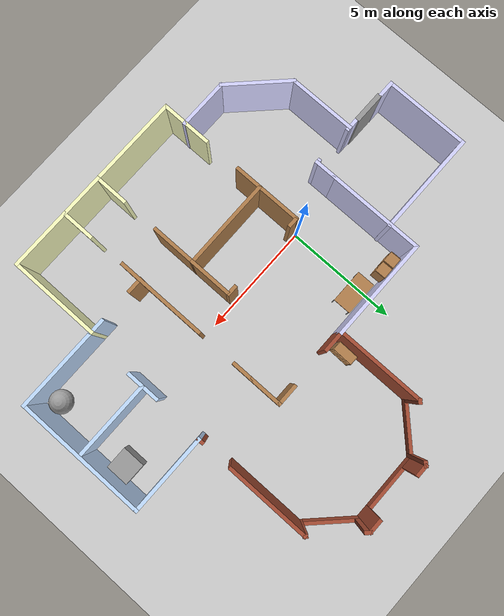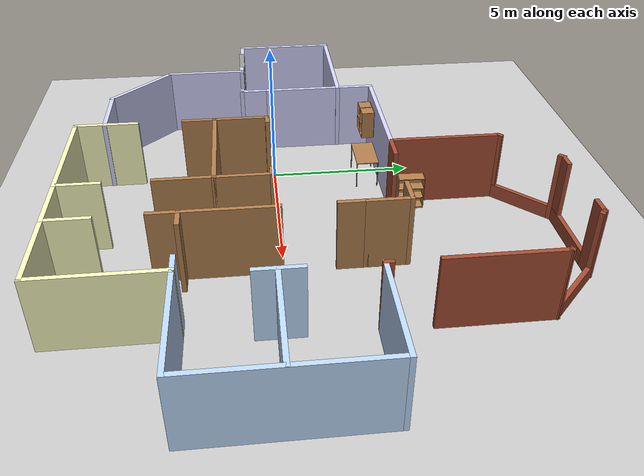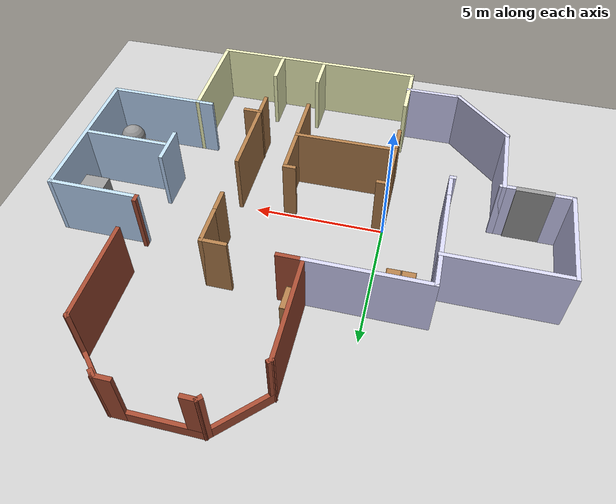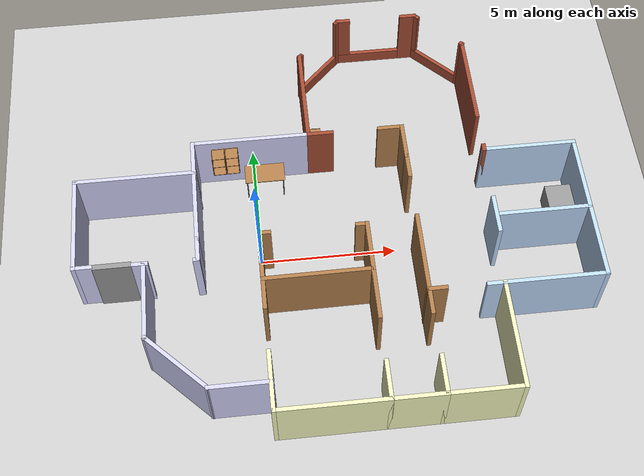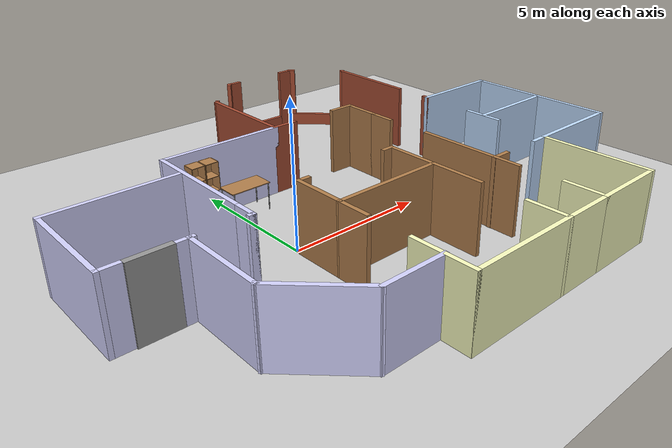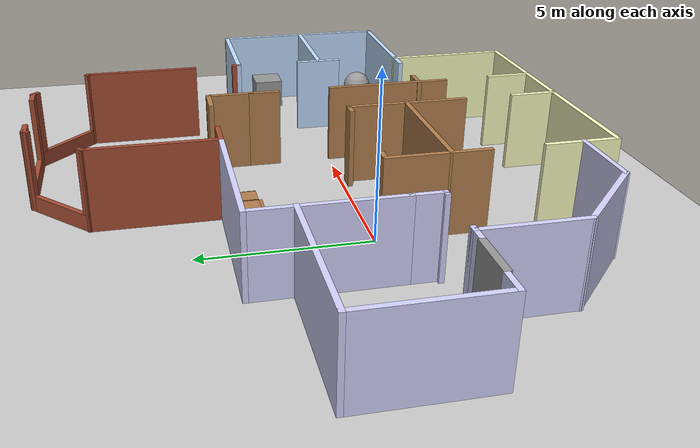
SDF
<sdf version="1.6">
 <world name="default">
  <light name="sun" type="directional">
   <pose>0 0 10 0 -0 0</pose>
   <diffuse>0.8 0.8 0.8 1</diffuse>
   <specular>0.2 0.2 0.2 1</specular>
   <attenuation>
    <range>1000</range>
    <constant>0.9</constant>
    <linear>0.01</linear>
    <quadratic>0.001</quadratic>
   </attenuation>
   <direction>-0.5 0.1 -0.9</direction>
  </light>
  <model name="ground_plane">
   <static>1</static>
   <link name="link">
    <collision name="collision">
     <geometry><plane><normal>0 0 1</normal><size>100 100</size></plane></geometry>
     <surface>
      <contact><collide_bitmask>65535</collide_bitmask></contact>
      <friction><ode><mu>100</mu><mu2>50</mu2></ode></friction>
     </surface>
    </collision>
    <visual name="visual">
     <cast_shadows>0</cast_shadows>
     <geometry><plane><normal>0 0 1</normal><size>100 100</size></plane></geometry>
     <material>
      <script><uri>file://media/materials/scripts/gazebo.material</uri><name>Gazebo/Grey</name></script>
     </material>
    </visual>
   </link>
  </model>
  <gravity>0 0 -9.8</gravity>
  <magnetic_field>6e-06 2.3e-05 -4.2e-05</magnetic_field>
  <atmosphere type="adiabatic"/>
  <physics name="default_physics" default="0" type="ode">
   <max_step_size>0.001</max_step_size>
   <real_time_factor>1</real_time_factor>
   <real_time_update_rate>1000</real_time_update_rate>
  </physics>
  <scene><ambient>0.4 0.4 0.4 1</ambient><background>0.7 0.7 0.7 1</background><shadows>1</shadows></scene>
  <spherical_coordinates>
   <surface_model>EARTH_WGS84</surface_model>
   <latitude_deg>0</latitude_deg>
   <longitude_deg>0</longitude_deg>
   <elevation>0</elevation>
   <heading_deg>0</heading_deg>
  </spherical_coordinates>
  <model name="largehouse">
   <pose>2.70916 1.2195 0 0 -0 0</pose>
   <link name="Door_1">
    <collision name="Door_1_Collision">
     <geometry><box><size>1.364 0.2 2.5</size></box></geometry>
     <pose>0 0 1.25 0 -0 0</pose>
    </collision>
    <visual name="Door_1_Visual">
     <pose>0 0 1.25 0 -0 0</pose>
     <geometry><box><size>1.364 0.2 2.5</size></box></geometry>
     <material>
      <script><uri>file://media/materials/scripts/gazebo.material</uri><name>Gazebo/Grey</name></script>
     </material>
    </visual>
    <pose>-7.8761 -2.2287 0 0 -0 0</pose>
   </link>
   <link name="Wall_0">
    <collision name="Wall_0_Collision">
     <geometry><box><size>4.00005 0.15 2.5</size></box></geometry>
     <pose>0 0 1.25 0 -0 0</pose>
    </collision>
    <visual name="Wall_0_Visual">
     <pose>0 0 1.25 0 -0 0</pose>
     <geometry><box><size>4.00005 0.15 2.5</size></box></geometry>
     <material>
      <script><uri>file://media/materials/scripts/gazebo.material</uri><name>Gazebo/Wood</name></script>
      <ambient>1 1 1 1</ambient>
     </material>
     <meta><layer>0</layer></meta>
    </visual>
    <pose>-0.765166 -3.26121 0 0 -0 0.005224</pose>
   </link>
   <link name="Wall_1">
    <collision name="Wall_1_Collision">
     <geometry><box><size>1.97989 0.15 2.5</size></box></geometry>
     <pose>0 0 1.25 0 -0 0</pose>
    </collision>
    <visual name="Wall_1_Visual">
     <pose>0 0 1.25 0 -0 0</pose>
     <geometry><box><size>1.97989 0.15 2.5</size></box></geometry>
     <material>
      <script><uri>file://media/materials/scripts/gazebo.material</uri><name>Gazebo/Wood</name></script>
      <ambient>1 1 1 1</ambient>
     </material>
     <meta><layer>0</layer></meta>
    </visual>
    <pose>1.15983 -2.33621 0 0 -0 1.5708</pose>
   </link>
   <link name="Wall_102">
    <pose>0.267282 7.25959 0 0 0 -2.35619</pose>
    <visual name="Wall_102_Visual_0">
     <pose>-1.11851 0 1.25 0 -0 0</pose>
     <geometry><box><size>0.262969 0.15 2.5</size></box></geometry>
     <material>
      <script><uri>file://media/materials/scripts/gazebo.material</uri><name>Gazebo/Bricks</name></script>
      <ambient>1 1 1 1</ambient>
     </material>
     <meta><layer>0</layer></meta>
    </visual>
    <collision name="Wall_102_Collision_0">
     <geometry><box><size>0.262969 0.15 2.5</size></box></geometry>
     <pose>-1.11851 0 1.25 0 -0 0</pose>
    </collision>
    <visual name="Wall_102_Visual_1">
     <pose>0.131485 0 0.25 0 -0 0</pose>
     <geometry><box><size>2.23703 0.15 0.5</size></box></geometry>
     <material>
      <script><uri>file://media/materials/scripts/gazebo.material</uri><name>Gazebo/Bricks</name></script>
      <ambient>1 1 1 1</ambient>
     </material>
     <meta><layer>0</layer></meta>
    </visual>
    <collision name="Wall_102_Collision_1">
     <geometry><box><size>2.23703 0.15 0.5</size></box></geometry>
     <pose>0.131485 0 0.25 0 -0 0</pose>
    </collision>
    <visual name="Wall_102_Visual_2">
     <pose>1.13149 0 1.5 0 -0 0</pose>
     <geometry><box><size>0.237031 0.15 2</size></box></geometry>
     <material>
      <script><uri>file://media/materials/scripts/gazebo.material</uri><name>Gazebo/Bricks</name></script>
      <ambient>1 1 1 1</ambient>
     </material>
     <meta><layer>0</layer></meta>
    </visual>
    <collision name="Wall_102_Collision_2">
     <geometry><box><size>0.237031 0.15 2</size></box></geometry>
     <pose>1.13149 0 1.5 0 -0 0</pose>
    </collision>
   </link>
   <link name="Wall_103">
    <collision name="Wall_103_Collision">
     <geometry><box><size>3.75 0.15 2.5</size></box></geometry>
     <pose>0 0 1.25 0 -0 0</pose>
    </collision>
    <visual name="Wall_103_Visual">
     <pose>0 0 1.25 0 -0 0</pose>
     <geometry><box><size>3.75 0.15 2.5</size></box></geometry>
     <material>
      <script><uri>file://media/materials/scripts/gazebo.material</uri><name>Gazebo/Bricks</name></script>
      <ambient>1 1 1 1</ambient>
     </material>
     <meta><layer>0</layer></meta>
    </visual>
    <pose>-0.563568 4.62874 0 0 0 -1.5708</pose>
   </link>
   <link name="Wall_106">
    <collision name="Wall_106_Collision">
     <geometry><box><size>4.5 0.15 2.5</size></box></geometry>
     <pose>0 0 1.25 0 -0 0</pose>
    </collision>
    <visual name="Wall_106_Visual">
     <pose>0 0 1.25 0 -0 0</pose>
     <geometry><box><size>4.5 0.15 2.5</size></box></geometry>
     <material>
      <script><uri>file://media/materials/scripts/gazebo.material</uri><name>Gazebo/Grey</name></script>
      <ambient>0.835294 0.835294 1 1</ambient>
     </material>
     <meta><layer>0</layer></meta>
    </visual>
    <pose>-2.71517 2.67874 0 0 -0 0</pose>
   </link>
   <link name="Wall_107">
    <collision name="Wall_107_Collision">
     <geometry><box><size>1 0.15 2.5</size></box></geometry>
     <pose>0 0 1.25 0 -0 0</pose>
    </collision>
    <visual name="Wall_107_Visual">
     <pose>0 0 1.25 0 -0 0</pose>
     <geometry><box><size>1 0.15 2.5</size></box></geometry>
     <material>
      <script><uri>file://media/materials/scripts/gazebo.material</uri><name>Gazebo/Bricks</name></script>
      <ambient>0.670588 0.678431 1 1</ambient>
     </material>
     <meta><layer>0</layer></meta>
    </visual>
    <pose>-0.115166 2.67874 0 0 -0 0</pose>
   </link>
   <link name="Wall_109">
    <collision name="Wall_109_Collision">
     <geometry><box><size>1 0.15 2.5</size></box></geometry>
     <pose>0 0 1.25 0 -0 0</pose>
    </collision>
    <visual name="Wall_109_Visual">
     <pose>0 0 1.25 0 -0 0</pose>
     <geometry><box><size>1 0.15 2.5</size></box></geometry>
     <material>
      <script><uri>file://media/materials/scripts/gazebo.material</uri><name>Gazebo/Wood</name></script>
      <ambient>1 1 1 1</ambient>
     </material>
     <meta><layer>0</layer></meta>
    </visual>
    <pose>2.53483 2.67874 0 0 -0 3.14159</pose>
   </link>
   <link name="Wall_15">
    <collision name="Wall_15_Collision">
     <geometry><box><size>2 0.15 2.5</size></box></geometry>
     <pose>0 0 1.25 0 -0 0</pose>
    </collision>
    <visual name="Wall_15_Visual">
     <pose>0 0 1.25 0 -0 0</pose>
     <geometry><box><size>2 0.15 2.5</size></box></geometry>
     <material>
      <script><uri>file://media/materials/scripts/gazebo.material</uri><name>Gazebo/Wood</name></script>
      <ambient>1 1 1 1</ambient>
     </material>
     <meta><layer>0</layer></meta>
    </visual>
    <pose>1.15983 -4.19626 0 0 0 -1.5708</pose>
   </link>
   <link name="Wall_18">
    <collision name="Wall_18_Collision">
     <geometry><box><size>4 0.15 2.5</size></box></geometry>
     <pose>0 0 1.25 0 -0 0</pose>
    </collision>
    <visual name="Wall_18_Visual">
     <pose>0 0 1.25 0 -0 0</pose>
     <geometry><box><size>4 0.15 2.5</size></box></geometry>
     <material>
      <script><uri>file://media/materials/scripts/gazebo.material</uri><name>Gazebo/Grey</name></script>
      <ambient>0.988235 1 0.760784 1</ambient>
     </material>
     <meta><layer>0</layer></meta>
    </visual>
    <pose>-0.765166 -8.12126 0 0 -0 0</pose>
   </link>
   <link name="Wall_19">
    <collision name="Wall_19_Collision">
     <geometry><box><size>1.5 0.15 2.5</size></box></geometry>
     <pose>0 0 1.25 0 -0 0</pose>
    </collision>
    <visual name="Wall_19_Visual">
     <pose>0 0 1.25 0 -0 0</pose>
     <geometry><box><size>1.5 0.15 2.5</size></box></geometry>
     <material>
      <script><uri>file://media/materials/scripts/gazebo.material</uri><name>Gazebo/Grey</name></script>
      <ambient>0.988235 1 0.760784 1</ambient>
     </material>
     <meta><layer>0</layer></meta>
    </visual>
    <pose>1.15983 -7.44626 0 0 -0 1.5708</pose>
   </link>
   <link name="Wall_2">
    <collision name="Wall_2_Collision">
     <geometry><box><size>0.5 0.15 2.5</size></box></geometry>
     <pose>0 0 1.25 0 -0 0</pose>
    </collision>
    <visual name="Wall_2_Visual">
     <pose>0 0 1.25 0 -0 0</pose>
     <geometry><box><size>0.5 0.15 2.5</size></box></geometry>
     <material>
      <script><uri>file://media/materials/scripts/gazebo.material</uri><name>Gazebo/Wood</name></script>
      <ambient>1 1 1 1</ambient>
     </material>
     <meta><layer>0</layer></meta>
    </visual>
    <pose>0.984834 -1.42126 0 0 -0 3.14159</pose>
   </link>
   <link name="Wall_21">
    <collision name="Wall_21_Collision">
     <geometry><box><size>2 0.15 2.5</size></box></geometry>
     <pose>0 0 1.25 0 -0 0</pose>
    </collision>
    <visual name="Wall_21_Visual">
     <pose>0 0 1.25 0 -0 0</pose>
     <geometry><box><size>2 0.15 2.5</size></box></geometry>
     <material>
      <script><uri>file://media/materials/scripts/gazebo.material</uri><name>Gazebo/Grey</name></script>
      <ambient>0.988235 1 0.760784 1</ambient>
     </material>
     <meta><layer>0</layer></meta>
    </visual>
    <pose>2.08483 -8.12126 0 0 -0 0</pose>
   </link>
   <link name="Wall_22">
    <collision name="Wall_22_Collision">
     <geometry><box><size>1.5 0.15 2.5</size></box></geometry>
     <pose>0 0 1.25 0 -0 0</pose>
    </collision>
    <visual name="Wall_22_Visual">
     <pose>0 0 1.25 0 -0 0</pose>
     <geometry><box><size>1.5 0.15 2.5</size></box></geometry>
     <material>
      <script><uri>file://media/materials/scripts/gazebo.material</uri><name>Gazebo/Grey</name></script>
      <ambient>0.988235 1 0.760784 1</ambient>
     </material>
     <meta><layer>0</layer></meta>
    </visual>
    <pose>3.00983 -7.44626 0 0 -0 1.5708</pose>
   </link>
   <link name="Wall_24">
    <collision name="Wall_24_Collision">
     <geometry><box><size>4 0.15 2.5</size></box></geometry>
     <pose>0 0 1.25 0 -0 0</pose>
    </collision>
    <visual name="Wall_24_Visual">
     <pose>0 0 1.25 0 -0 0</pose>
     <geometry><box><size>4 0.15 2.5</size></box></geometry>
     <material>
      <script><uri>file://media/materials/scripts/gazebo.material</uri><name>Gazebo/Wood</name></script>
      <ambient>1 1 1 1</ambient>
     </material>
     <meta><layer>0</layer></meta>
    </visual>
    <pose>2.96886 -3.22346 0 0 -0 1.5708</pose>
   </link>
   <link name="Wall_27">
    <collision name="Wall_27_Collision">
     <geometry><box><size>2.75 0.15 2.5</size></box></geometry>
     <pose>0 0 1.25 0 -0 0</pose>
    </collision>
    <visual name="Wall_27_Visual">
     <pose>0 0 1.25 0 -0 0</pose>
     <geometry><box><size>2.75 0.15 2.5</size></box></geometry>
     <material>
      <script><uri>file://media/materials/scripts/gazebo.material</uri><name>Gazebo/Grey</name></script>
      <ambient>0.988235 1 0.760784 1</ambient>
     </material>
     <meta><layer>0</layer></meta>
    </visual>
    <pose>4.30983 -8.12126 0 0 -0 0</pose>
   </link>
   <link name="Wall_28">
    <collision name="Wall_28_Collision">
     <geometry><box><size>4.00048 0.15 2.5</size></box></geometry>
     <pose>0 0 1.25 0 -0 0</pose>
    </collision>
    <visual name="Wall_28_Visual">
     <pose>0 0 1.25 0 -0 0</pose>
     <geometry><box><size>4.00048 0.15 2.5</size></box></geometry>
     <material>
      <script><uri>file://media/materials/scripts/gazebo.material</uri><name>Gazebo/Grey</name></script>
      <ambient>0.988235 1 0.760784 1</ambient>
     </material>
     <meta><layer>0</layer></meta>
    </visual>
    <pose>5.60983 -6.19626 0 0 -0 1.5708</pose>
   </link>
   <link name="Wall_35">
    <collision name="Wall_35_Collision">
     <geometry><box><size>0.75 0.15 2.5</size></box></geometry>
     <pose>0 0 1.25 0 -0 0</pose>
    </collision>
    <visual name="Wall_35_Visual">
     <pose>0 0 1.25 0 -0 0</pose>
     <geometry><box><size>0.75 0.15 2.5</size></box></geometry>
     <material>
      <script><uri>file://media/materials/scripts/gazebo.material</uri><name>Gazebo/Grey</name></script>
      <ambient>0.752941 0.866667 1 1</ambient>
     </material>
     <meta><layer>0</layer></meta>
    </visual>
    <pose>5.34025 -4.27126 0 0 -0 3.14159</pose>
   </link>
   <link name="Wall_37">
    <collision name="Wall_37_Collision">
     <geometry><box><size>0.75 0.15 2.5</size></box></geometry>
     <pose>0 0 1.25 0 -0 0</pose>
    </collision>
    <visual name="Wall_37_Visual">
     <pose>0 0 1.25 0 -0 0</pose>
     <geometry><box><size>0.75 0.15 2.5</size></box></geometry>
     <material>
      <script><uri>file://media/materials/scripts/gazebo.material</uri><name>Gazebo/Wood</name></script>
      <ambient>1 1 1 1</ambient>
     </material>
     <meta><layer>0</layer></meta>
    </visual>
    <pose>3.25047 -4.26025 0 0 -0 0</pose>
   </link>
   <link name="Wall_39">
    <collision name="Wall_39_Collision">
     <geometry><box><size>3.75 0.15 2.5</size></box></geometry>
     <pose>0 0 1.25 0 -0 0</pose>
    </collision>
    <visual name="Wall_39_Visual">
     <pose>0 0 1.25 0 -0 0</pose>
     <geometry><box><size>3.75 0.15 2.5</size></box></geometry>
     <material>
      <script><uri>file://media/materials/scripts/gazebo.material</uri><name>Gazebo/Grey</name></script>
      <ambient>0.752941 0.866667 1 1</ambient>
     </material>
     <meta><layer>0</layer></meta>
    </visual>
    <pose>7.40983 -4.27126 0 0 -0 0</pose>
   </link>
   <link name="Wall_40">
    <collision name="Wall_40_Collision">
     <geometry><box><size>5.75025 0.15 2.5</size></box></geometry>
     <pose>0 0 1.25 0 -0 0</pose>
    </collision>
    <visual name="Wall_40_Visual">
     <pose>0 0 1.25 0 -0 0</pose>
     <geometry><box><size>5.75025 0.15 2.5</size></box></geometry>
     <material>
      <script><uri>file://media/materials/scripts/gazebo.material</uri><name>Gazebo/Grey</name></script>
      <ambient>0.752941 0.866667 1 1</ambient>
     </material>
     <meta><layer>0</layer></meta>
    </visual>
    <pose>9.20983 -1.47126 0 0 -0 1.5708</pose>
   </link>
   <link name="Wall_5">
    <collision name="Wall_5_Collision">
     <geometry><box><size>2 0.15 2.5</size></box></geometry>
     <pose>0 0 1.25 0 -0 0</pose>
    </collision>
    <visual name="Wall_5_Visual">
     <pose>0 0 1.25 0 -0 0</pose>
     <geometry><box><size>2 0.15 2.5</size></box></geometry>
     <material>
      <script><uri>file://media/materials/scripts/gazebo.material</uri><name>Gazebo/Wood</name></script>
      <ambient>1 1 1 1</ambient>
     </material>
     <meta><layer>0</layer></meta>
    </visual>
    <pose>-2.69017 -2.34626 0 0 -0 1.5708</pose>
   </link>
   <link name="Wall_50">
    <collision name="Wall_50_Collision">
     <geometry><box><size>1 0.15 2.5</size></box></geometry>
     <pose>0 0 1.25 0 -0 0</pose>
    </collision>
    <visual name="Wall_50_Visual">
     <pose>0 0 1.25 0 -0 0</pose>
     <geometry><box><size>1 0.15 2.5</size></box></geometry>
     <material>
      <script><uri>file://media/materials/scripts/gazebo.material</uri><name>Gazebo/Wood</name></script>
      <ambient>1 1 1 1</ambient>
     </material>
     <meta><layer>0</layer></meta>
    </visual>
    <pose>2.95983 0.903737 0 0 0 -1.5708</pose>
   </link>
   <link name="Wall_52">
    <collision name="Wall_52_Collision">
     <geometry><box><size>3.5 0.15 2.5</size></box></geometry>
     <pose>0 0 1.25 0 -0 0</pose>
    </collision>
    <visual name="Wall_52_Visual">
     <pose>0 0 1.25 0 -0 0</pose>
     <geometry><box><size>3.5 0.15 2.5</size></box></geometry>
     <material>
      <script><uri>file://media/materials/scripts/gazebo.material</uri><name>Gazebo/Grey</name></script>
      <ambient>0.752941 0.866667 1 1</ambient>
     </material>
     <meta><layer>0</layer></meta>
    </visual>
    <pose>7.52318 -1.51345 0 0 -0 3.14159</pose>
   </link>
   <link name="Wall_54">
    <collision name="Wall_54_Collision">
     <geometry><box><size>1.5 0.15 2.5</size></box></geometry>
     <pose>0 0 1.25 0 -0 0</pose>
    </collision>
    <visual name="Wall_54_Visual">
     <pose>0 0 1.25 0 -0 0</pose>
     <geometry><box><size>1.5 0.15 2.5</size></box></geometry>
     <material>
      <script><uri>file://media/materials/scripts/gazebo.material</uri><name>Gazebo/Wood</name></script>
      <ambient>1 1 1 1</ambient>
     </material>
     <meta><layer>0</layer></meta>
    </visual>
    <pose>2.95983 2.00374 0 0 -0 1.5708</pose>
   </link>
   <link name="Wall_56">
    <collision name="Wall_56_Collision">
     <geometry><box><size>4.25 0.15 2.5</size></box></geometry>
     <pose>0 0 1.25 0 -0 0</pose>
    </collision>
    <visual name="Wall_56_Visual">
     <pose>0 0 1.25 0 -0 0</pose>
     <geometry><box><size>4.25 0.15 2.5</size></box></geometry>
     <material>
      <script><uri>file://media/materials/scripts/gazebo.material</uri><name>Gazebo/Grey</name></script>
      <ambient>0.835294 0.835294 1 1</ambient>
     </material>
     <meta><layer>0</layer></meta>
    </visual>
    <pose>-4.89017 0.628737 0 0 0 -1.5708</pose>
   </link>
   <link name="Wall_6">
    <collision name="Wall_6_Collision">
     <geometry><box><size>0.5 0.15 2.5</size></box></geometry>
     <pose>0 0 1.25 0 -0 0</pose>
    </collision>
    <visual name="Wall_6_Visual">
     <pose>0 0 1.25 0 -0 0</pose>
     <geometry><box><size>0.5 0.15 2.5</size></box></geometry>
     <material>
      <script><uri>file://media/materials/scripts/gazebo.material</uri><name>Gazebo/Wood</name></script>
      <ambient>1 1 1 1</ambient>
     </material>
     <meta><layer>0</layer></meta>
    </visual>
    <pose>-2.51517 -1.42126 0 0 -0 0</pose>
   </link>
   <link name="Wall_61">
    <collision name="Wall_61_Collision">
     <geometry><box><size>1 0.15 2.5</size></box></geometry>
     <pose>0 0 1.25 0 -0 0</pose>
    </collision>
    <visual name="Wall_61_Visual">
     <pose>0 0 1.25 0 -0 0</pose>
     <geometry><box><size>1 0.15 2.5</size></box></geometry>
     <material>
      <script><uri>file://media/materials/scripts/gazebo.material</uri><name>Gazebo/Grey</name></script>
      <ambient>0.835294 0.835294 1 1</ambient>
     </material>
     <meta><layer>0</layer></meta>
    </visual>
    <pose>-4.89017 -1.84626 0 0 0 -1.5708</pose>
   </link>
   <link name="Wall_68">
    <collision name="Wall_68_Collision">
     <geometry><box><size>2.25 0.15 2.5</size></box></geometry>
     <pose>0 0 1.25 0 -0 0</pose>
    </collision>
    <visual name="Wall_68_Visual">
     <pose>0 0 1.25 0 -0 0</pose>
     <geometry><box><size>2.25 0.15 2.5</size></box></geometry>
     <material>
      <script><uri>file://media/materials/scripts/gazebo.material</uri><name>Gazebo/Grey</name></script>
      <ambient>0.835294 0.835294 1 1</ambient>
     </material>
     <meta><layer>0</layer></meta>
    </visual>
    <pose>-3.72078 -7.11434 0 0 -0 3.14159</pose>
   </link>
   <link name="Wall_69">
    <collision name="Wall_69_Collision">
     <geometry><box><size>3 0.15 2.5</size></box></geometry>
     <pose>0 0 1.25 0 -0 0</pose>
    </collision>
    <visual name="Wall_69_Visual">
     <pose>0 0 1.25 0 -0 0</pose>
     <geometry><box><size>3 0.15 2.5</size></box></geometry>
     <material>
      <script><uri>file://media/materials/scripts/gazebo.material</uri><name>Gazebo/Grey</name></script>
      <ambient>0.835294 0.835294 1 1</ambient>
     </material>
     <meta><layer>0</layer></meta>
    </visual>
    <pose>-5.77841 -6.10671 0 0 -0 2.35619</pose>
   </link>
   <link name="Wall_70">
    <collision name="Wall_70_Collision">
     <geometry><box><size>3 0.15 2.5</size></box></geometry>
     <pose>0 0 1.25 0 -0 0</pose>
    </collision>
    <visual name="Wall_70_Visual">
     <pose>0 0 1.25 0 -0 0</pose>
     <geometry><box><size>3 0.15 2.5</size></box></geometry>
     <material>
      <script><uri>file://media/materials/scripts/gazebo.material</uri><name>Gazebo/Grey</name></script>
      <ambient>0.835294 0.835294 1 1</ambient>
     </material>
     <meta><layer>0</layer></meta>
    </visual>
    <pose>-6.78603 -3.67408 0 0 -0 1.5708</pose>
   </link>
   <link name="Wall_72">
    <collision name="Wall_72_Collision">
     <geometry><box><size>0.25 0.15 2.5</size></box></geometry>
     <pose>0 0 1.25 0 -0 0</pose>
    </collision>
    <visual name="Wall_72_Visual">
     <pose>0 0 1.25 0 -0 0</pose>
     <geometry><box><size>0.25 0.15 2.5</size></box></geometry>
     <material>
      <script><uri>file://media/materials/scripts/gazebo.material</uri><name>Gazebo/Grey</name></script>
      <ambient>0.835294 0.835294 1 1</ambient>
     </material>
     <meta><layer>0</layer></meta>
    </visual>
    <pose>-4.94017 -2.27126 0 0 -0 3.14159</pose>
   </link>
   <link name="Wall_74">
    <collision name="Wall_74_Collision">
     <geometry><box><size>0.25 0.15 2.5</size></box></geometry>
     <pose>0 0 1.25 0 -0 0</pose>
    </collision>
    <visual name="Wall_74_Visual">
     <pose>0 0 1.25 0 -0 0</pose>
     <geometry><box><size>0.25 0.15 2.5</size></box></geometry>
     <material>
      <script><uri>file://media/materials/scripts/gazebo.material</uri><name>Gazebo/Grey</name></script>
      <ambient>0.835294 0.835294 1 1</ambient>
     </material>
     <meta><layer>0</layer></meta>
    </visual>
    <pose>-6.73603 -2.24908 0 0 -0 0</pose>
   </link>
   <link name="Wall_76">
    <collision name="Wall_76_Collision">
     <geometry><box><size>4.5 0.15 2.5</size></box></geometry>
     <pose>0 0 1.25 0 -0 0</pose>
    </collision>
    <visual name="Wall_76_Visual">
     <pose>0 0 1.25 0 -0 0</pose>
     <geometry><box><size>4.5 0.15 2.5</size></box></geometry>
     <material>
      <script><uri>file://media/materials/scripts/gazebo.material</uri><name>Gazebo/Grey</name></script>
      <ambient>0.835294 0.835294 1 1</ambient>
     </material>
     <meta><layer>0</layer></meta>
    </visual>
    <pose>-7.03484 1.40368 0 0 -0 3.14159</pose>
   </link>
   <link name="Wall_77">
    <collision name="Wall_77_Collision">
     <geometry><box><size>3.75 0.15 2.5</size></box></geometry>
     <pose>0 0 1.25 0 -0 0</pose>
    </collision>
    <visual name="Wall_77_Visual">
     <pose>0 0 1.25 0 -0 0</pose>
     <geometry><box><size>3.75 0.15 2.5</size></box></geometry>
     <material>
      <script><uri>file://media/materials/scripts/gazebo.material</uri><name>Gazebo/Grey</name></script>
      <ambient>0.835294 0.835294 1 1</ambient>
     </material>
     <meta><layer>0</layer></meta>
    </visual>
    <pose>-9.20983 -0.396325 0 0 0 -1.5708</pose>
   </link>
   <link name="Wall_78">
    <collision name="Wall_78_Collision">
     <geometry><box><size>0.75 0.15 2.5</size></box></geometry>
     <pose>0 0 1.25 0 -0 0</pose>
    </collision>
    <visual name="Wall_78_Visual">
     <pose>0 0 1.25 0 -0 0</pose>
     <geometry><box><size>0.75 0.15 2.5</size></box></geometry>
     <material>
      <script><uri>file://media/materials/scripts/gazebo.material</uri><name>Gazebo/Grey</name></script>
      <ambient>0.835294 0.835294 1 1</ambient>
     </material>
     <meta><layer>0</layer></meta>
    </visual>
    <pose>-8.90983 -2.19632 0 0 -0 0</pose>
   </link>
   <link name="Wall_80">
    <collision name="Wall_80_Collision">
     <geometry><box><size>0.5 0.15 2.5</size></box></geometry>
     <pose>0 0 1.25 0 -0 0</pose>
    </collision>
    <visual name="Wall_80_Visual">
     <pose>0 0 1.25 0 -0 0</pose>
     <geometry><box><size>0.5 0.15 2.5</size></box></geometry>
     <material>
      <script><uri>file://media/materials/scripts/gazebo.material</uri><name>Gazebo/Grey</name></script>
      <ambient>0.835294 0.835294 1 1</ambient>
     </material>
     <meta><layer>0</layer></meta>
    </visual>
    <pose>-6.96103 -2.24908 0 0 -0 3.14159</pose>
   </link>
   <link name="Wall_82">
    <collision name="Wall_82_Collision">
     <geometry><box><size>1.5 0.15 2.5</size></box></geometry>
     <pose>0 0 1.25 0 -0 0</pose>
    </collision>
    <visual name="Wall_82_Visual">
     <pose>0 0 1.25 0 -0 0</pose>
     <geometry><box><size>1.5 0.15 2.5</size></box></geometry>
     <material>
      <script><uri>file://media/materials/scripts/gazebo.material</uri><name>Gazebo/Grey</name></script>
      <ambient>0.752941 0.866667 1 1</ambient>
     </material>
     <meta><layer>0</layer></meta>
    </visual>
    <pose>5.81671 -1.4918 0 0 0 -1.5708</pose>
   </link>
   <link name="Wall_84">
    <collision name="Wall_84_Collision">
     <geometry><box><size>1.25 0.15 2.5</size></box></geometry>
     <pose>0 0 1.25 0 -0 0</pose>
    </collision>
    <visual name="Wall_84_Visual">
     <pose>0 0 1.25 0 -0 0</pose>
     <geometry><box><size>1.25 0.15 2.5</size></box></geometry>
     <material>
      <script><uri>file://media/materials/scripts/gazebo.material</uri><name>Gazebo/Wood</name></script>
      <ambient>1 1 1 1</ambient>
     </material>
     <meta><layer>0</layer></meta>
    </visual>
    <pose>-2.69017 -3.82126 0 0 0 -1.5708</pose>
   </link>
   <link name="Wall_86">
    <collision name="Wall_86_Collision">
     <geometry><box><size>2.25 0.15 2.5</size></box></geometry>
     <pose>0 0 1.25 0 -0 0</pose>
    </collision>
    <visual name="Wall_86_Visual">
     <pose>0 0 1.25 0 -0 0</pose>
     <geometry><box><size>2.25 0.15 2.5</size></box></geometry>
     <material>
      <script><uri>file://media/materials/scripts/gazebo.material</uri><name>Gazebo/Grey</name></script>
      <ambient>0.988235 1 0.760784 1</ambient>
     </material>
     <meta><layer>0</layer></meta>
    </visual>
    <pose>-2.69017 -7.07126 0 0 -0 1.5708</pose>
   </link>
   <link name="Wall_88">
    <collision name="Wall_88_Collision">
     <geometry><box><size>3.5 0.15 2.5</size></box></geometry>
     <pose>0 0 1.25 0 -0 0</pose>
    </collision>
    <visual name="Wall_88_Visual">
     <pose>0 0 1.25 0 -0 0</pose>
     <geometry><box><size>3.5 0.15 2.5</size></box></geometry>
     <material>
      <script><uri>file://media/materials/scripts/gazebo.material</uri><name>Gazebo/Grey</name></script>
      <ambient>0.752941 0.866667 1 1</ambient>
     </material>
     <meta><layer>0</layer></meta>
    </visual>
    <pose>7.53483 1.32874 0 0 -0 3.14159</pose>
   </link>
   <link name="Wall_90">
    <pose>5.85983 3.87874 0 0 -0 1.5708</pose>
    <visual name="Wall_90_Visual_0">
     <pose>-2.46761 0 1.25 0 -0 0</pose>
     <geometry><box><size>0.314771 0.15 2.5</size></box></geometry>
     <material>
      <script><uri>file://media/materials/scripts/gazebo.material</uri><name>Gazebo/Bricks</name></script>
      <ambient>1 1 1 1</ambient>
     </material>
     <meta><layer>0</layer></meta>
    </visual>
    <collision name="Wall_90_Collision_0">
     <geometry><box><size>0.314771 0.15 2.5</size></box></geometry>
     <pose>-2.46761 0 1.25 0 -0 0</pose>
    </collision>
    <visual name="Wall_90_Visual_1">
     <pose>0.779386 0 1.25 0 -0 0</pose>
     <geometry><box><size>3.69123 0.15 2.5</size></box></geometry>
     <material>
      <script><uri>file://media/materials/scripts/gazebo.material</uri><name>Gazebo/Bricks</name></script>
      <ambient>1 1 1 1</ambient>
     </material>
     <meta><layer>0</layer></meta>
    </visual>
    <collision name="Wall_90_Collision_1">
     <geometry><box><size>3.69123 0.15 2.5</size></box></geometry>
     <pose>0.779386 0 1.25 0 -0 0</pose>
    </collision>
   </link>
   <link name="Wall_93">
    <pose>5.02898 7.25959 0 0 -0 2.35619</pose>
    <visual name="Wall_93_Visual_0">
     <pose>-1.15324 0 1.25 0 -0 0</pose>
     <geometry><box><size>0.193531 0.15 2.5</size></box></geometry>
     <material>
      <script><uri>file://media/materials/scripts/gazebo.material</uri><name>Gazebo/Bricks</name></script>
      <ambient>1 1 1 1</ambient>
     </material>
     <meta><layer>0</layer></meta>
    </visual>
    <collision name="Wall_93_Collision_0">
     <geometry><box><size>0.193531 0.15 2.5</size></box></geometry>
     <pose>-1.15324 0 1.25 0 -0 0</pose>
    </collision>
    <visual name="Wall_93_Visual_1">
     <pose>0.096765 0 0.25 0 -0 0</pose>
     <geometry><box><size>2.30647 0.15 0.5</size></box></geometry>
     <material>
      <script><uri>file://media/materials/scripts/gazebo.material</uri><name>Gazebo/Bricks</name></script>
      <ambient>1 1 1 1</ambient>
     </material>
     <meta><layer>0</layer></meta>
    </visual>
    <collision name="Wall_93_Collision_1">
     <geometry><box><size>2.30647 0.15 0.5</size></box></geometry>
     <pose>0.096765 0 0.25 0 -0 0</pose>
    </collision>
    <visual name="Wall_93_Visual_2">
     <pose>1.09676 0 1.5 0 -0 0</pose>
     <geometry><box><size>0.306469 0.15 2</size></box></geometry>
     <material>
      <script><uri>file://media/materials/scripts/gazebo.material</uri><name>Gazebo/Bricks</name></script>
      <ambient>1 1 1 1</ambient>
     </material>
     <meta><layer>0</layer></meta>
    </visual>
    <collision name="Wall_93_Collision_2">
     <geometry><box><size>0.306469 0.15 2</size></box></geometry>
     <pose>1.09676 0 1.5 0 -0 0</pose>
    </collision>
   </link>
   <link name="Wall_94">
    <pose>2.64813 8.09044 0 0 -0 3.14159</pose>
    <visual name="Wall_94_Visual_0">
     <pose>-1.2905 0 1.25 0 -0 0</pose>
     <geometry><box><size>0.669004 0.15 2.5</size></box></geometry>
     <material>
      <script><uri>file://media/materials/scripts/gazebo.material</uri><name>Gazebo/Bricks</name></script>
      <ambient>1 1 1 1</ambient>
     </material>
     <meta><layer>0</layer></meta>
    </visual>
    <collision name="Wall_94_Collision_0">
     <geometry><box><size>0.669004 0.15 2.5</size></box></geometry>
     <pose>-1.2905 0 1.25 0 -0 0</pose>
    </collision>
    <visual name="Wall_94_Visual_1">
     <pose>0.334502 0 0.25 0 -0 0</pose>
     <geometry><box><size>2.581 0.15 0.5</size></box></geometry>
     <material>
      <script><uri>file://media/materials/scripts/gazebo.material</uri><name>Gazebo/Bricks</name></script>
      <ambient>1 1 1 1</ambient>
     </material>
     <meta><layer>0</layer></meta>
    </visual>
    <collision name="Wall_94_Collision_1">
     <geometry><box><size>2.581 0.15 0.5</size></box></geometry>
     <pose>0.334502 0 0.25 0 -0 0</pose>
    </collision>
    <visual name="Wall_94_Visual_2">
     <pose>1.3345 0 1.5 0 -0 0</pose>
     <geometry><box><size>0.580996 0.15 2</size></box></geometry>
     <material>
      <script><uri>file://media/materials/scripts/gazebo.material</uri><name>Gazebo/Bricks</name></script>
      <ambient>1 1 1 1</ambient>
     </material>
     <meta><layer>0</layer></meta>
    </visual>
    <collision name="Wall_94_Collision_2">
     <geometry><box><size>0.580996 0.15 2</size></box></geometry>
     <pose>1.3345 0 1.5 0 -0 0</pose>
    </collision>
   </link>
   <static>1</static>
  </model>
  <model name="bookshelf">
   <static>1</static>
   <link name="link">
    <inertial><mass>1</mass></inertial>
    <collision name="back">
     <pose>0 0.005 0.6 0 -0 0</pose>
     <geometry><box><size>0.9 0.01 1.2</size></box></geometry>
    </collision>
    <visual name="visual1">
     <pose>0 0.005 0.6 0 -0 0</pose>
     <geometry><box><size>0.9 0.01 1.2</size></box></geometry>
     <material>
      <script><uri>file://media/materials/scripts/gazebo.material</uri><name>Gazebo/Wood</name></script>
     </material>
    </visual>
    <collision name="left_side">
     <pose>0.45 -0.195 0.6 0 -0 0</pose>
     <geometry><box><size>0.02 0.4 1.2</size></box></geometry>
    </collision>
    <visual name="visual2">
     <pose>0.45 -0.195 0.6 0 -0 0</pose>
     <geometry><box><size>0.02 0.4 1.2</size></box></geometry>
     <material>
      <script><uri>file://media/materials/scripts/gazebo.material</uri><name>Gazebo/Wood</name></script>
     </material>
    </visual>
    <collision name="right_side">
     <pose>-0.45 -0.195 0.6 0 -0 0</pose>
     <geometry><box><size>0.02 0.4 1.2</size></box></geometry>
    </collision>
    <visual name="visual3">
     <pose>-0.45 -0.195 0.6 0 -0 0</pose>
     <geometry><box><size>0.02 0.4 1.2</size></box></geometry>
     <material>
      <script><uri>file://media/materials/scripts/gazebo.material</uri><name>Gazebo/Wood</name></script>
     </material>
    </visual>
    <collision name="bottom">
     <pose>0 -0.195 0.03 0 -0 0</pose>
     <geometry><box><size>0.88 0.4 0.06</size></box></geometry>
    </collision>
    <visual name="visual4">
     <pose>0 -0.195 0.03 0 -0 0</pose>
     <geometry><box><size>0.88 0.4 0.06</size></box></geometry>
     <material>
      <script><uri>file://media/materials/scripts/gazebo.material</uri><name>Gazebo/Wood</name></script>
     </material>
    </visual>
    <collision name="top">
     <pose>0 -0.195 1.19 0 -0 0</pose>
     <geometry><box><size>0.88 0.4 0.02</size></box></geometry>
    </collision>
    <visual name="visual5">
     <pose>0 -0.195 1.19 0 -0 0</pose>
     <geometry><box><size>0.88 0.4 0.02</size></box></geometry>
     <material>
      <script><uri>file://media/materials/scripts/gazebo.material</uri><name>Gazebo/Wood</name></script>
     </material>
    </visual>
    <collision name="low_shelf">
     <pose>0 -0.195 0.43 0 -0 0</pose>
     <geometry><box><size>0.88 0.4 0.02</size></box></geometry>
    </collision>
    <visual name="visual6">
     <pose>0 -0.195 0.43 0 -0 0</pose>
     <geometry><box><size>0.88 0.4 0.02</size></box></geometry>
     <material>
      <script><uri>file://media/materials/scripts/gazebo.material</uri><name>Gazebo/Wood</name></script>
     </material>
    </visual>
    <collision name="high_shelf">
     <pose>0 -0.195 0.8 0 -0 0</pose>
     <geometry><box><size>0.88 0.4 0.02</size></box></geometry>
    </collision>
    <visual name="visual7">
     <pose>0 -0.195 0.8 0 -0 0</pose>
     <geometry><box><size>0.88 0.4 0.02</size></box></geometry>
     <material>
      <script><uri>file://media/materials/scripts/gazebo.material</uri><name>Gazebo/Wood</name></script>
     </material>
    </visual>
   </link>
   <pose>2.27944 4.62175 -0.004537 0 -0 1.55044</pose>
  </model>
  <model name="cabinet">
   <static>1</static>
   <link name="cabinet_bottom_plate">
    <inertial>
     <pose>0 0 -1 0 -0 0</pose>
     <inertia><ixx>2.05</ixx><ixy>0</ixy><ixz>0</ixz><iyy>2.05</iyy><iyz>0</iyz><izz>2.05</izz></inertia>
     <mass>25</mass>
    </inertial>
    <collision name="cabinet_bottom_plate_geom">
     <pose>0 0 0.01 0 -0 0</pose>
     <geometry><box><size>0.45 0.45 0.02</size></box></geometry>
    </collision>
    <visual name="cabinet_bottom_plate_geom_visual">
     <pose>0 0 0.01 0 -0 0</pose>
     <geometry><box><size>0.45 0.45 0.02</size></box></geometry>
     <material>
      <script><uri>file://media/materials/scripts/gazebo.material</uri><name>Gazebo/Wood</name></script>
     </material>
    </visual>
    <collision name="cabinet_bottom_plate_geom_cabinet_back_plate">
     <pose>0.235 0 0.51 0 -0 0</pose>
     <geometry><box><size>0.02 0.45 1.02</size></box></geometry>
    </collision>
    <visual name="cabinet_bottom_plate_geom_cabinet_back_plate_visual">
     <pose>0.235 0 0.51 0 -0 0</pose>
     <geometry><box><size>0.02 0.45 1.02</size></box></geometry>
     <material>
      <script><uri>file://media/materials/scripts/gazebo.material</uri><name>Gazebo/Wood</name></script>
     </material>
    </visual>
    <collision name="cabinet_bottom_plate_geom_cabinet_left_plate">
     <pose>0 0.235 0.51 0 -0 0</pose>
     <geometry><box><size>0.45 0.02 1.02</size></box></geometry>
    </collision>
    <visual name="cabinet_bottom_plate_geom_cabinet_left_plate_visual">
     <pose>0 0.235 0.51 0 -0 0</pose>
     <geometry><box><size>0.45 0.02 1.02</size></box></geometry>
     <material>
      <script><uri>file://media/materials/scripts/gazebo.material</uri><name>Gazebo/Wood</name></script>
     </material>
    </visual>
    <collision name="cabinet_bottom_plate_geom_cabinet_middle_plate">
     <pose>0 0 0.51 0 -0 0</pose>
     <geometry><box><size>0.45 0.45 0.02</size></box></geometry>
    </collision>
    <visual name="cabinet_bottom_plate_geom_cabinet_middle_plate_visual">
     <pose>0 0 0.51 0 -0 0</pose>
     <geometry><box><size>0.45 0.45 0.02</size></box></geometry>
     <material>
      <script><uri>file://media/materials/scripts/gazebo.material</uri><name>Gazebo/Wood</name></script>
     </material>
    </visual>
    <collision name="cabinet_bottom_plate_geom_cabinet_right_plate">
     <pose>0 -0.235 0.51 0 -0 0</pose>
     <geometry><box><size>0.45 0.02 1.02</size></box></geometry>
    </collision>
    <visual name="cabinet_bottom_plate_geom_cabinet_right_plate_visual">
     <pose>0 -0.235 0.51 0 -0 0</pose>
     <geometry><box><size>0.45 0.02 1.02</size></box></geometry>
     <material>
      <script><uri>file://media/materials/scripts/gazebo.material</uri><name>Gazebo/Wood</name></script>
     </material>
    </visual>
    <collision name="cabinet_bottom_plate_geom_cabinet_top_plate">
     <pose>0 0 1.01 0 -0 0</pose>
     <geometry><box><size>0.45 0.45 0.02</size></box></geometry>
    </collision>
    <visual name="cabinet_bottom_plate_geom_cabinet_top_plate_visual">
     <pose>0 0 1.01 0 -0 0</pose>
     <geometry><box><size>0.45 0.45 0.02</size></box></geometry>
     <material>
      <script><uri>file://media/materials/scripts/gazebo.material</uri><name>Gazebo/Wood</name></script>
     </material>
    </visual>
   </link>
   <pose>-1.27394 3.5611 1.1245 0 -0 1.58756</pose>
  </model>
  <model name="cabinet_clone">
   <static>1</static>
   <link name="cabinet_bottom_plate">
    <inertial>
     <pose>0 0 -1 0 -0 0</pose>
     <inertia><ixx>2.05</ixx><ixy>0</ixy><ixz>0</ixz><iyy>2.05</iyy><iyz>0</iyz><izz>2.05</izz></inertia>
     <mass>25</mass>
    </inertial>
    <collision name="cabinet_bottom_plate_geom">
     <pose>0 0 0.01 0 -0 0</pose>
     <geometry><box><size>0.45 0.45 0.02</size></box></geometry>
    </collision>
    <visual name="cabinet_bottom_plate_geom_visual">
     <pose>0 0 0.01 0 -0 0</pose>
     <geometry><box><size>0.45 0.45 0.02</size></box></geometry>
     <material>
      <script><uri>file://media/materials/scripts/gazebo.material</uri><name>Gazebo/Wood</name></script>
     </material>
    </visual>
    <collision name="cabinet_bottom_plate_geom_cabinet_back_plate">
     <pose>0.235 0 0.51 0 -0 0</pose>
     <geometry><box><size>0.02 0.45 1.02</size></box></geometry>
    </collision>
    <visual name="cabinet_bottom_plate_geom_cabinet_back_plate_visual">
     <pose>0.235 0 0.51 0 -0 0</pose>
     <geometry><box><size>0.02 0.45 1.02</size></box></geometry>
     <material>
      <script><uri>file://media/materials/scripts/gazebo.material</uri><name>Gazebo/Wood</name></script>
     </material>
    </visual>
    <collision name="cabinet_bottom_plate_geom_cabinet_left_plate">
     <pose>0 0.235 0.51 0 -0 0</pose>
     <geometry><box><size>0.45 0.02 1.02</size></box></geometry>
    </collision>
    <visual name="cabinet_bottom_plate_geom_cabinet_left_plate_visual">
     <pose>0 0.235 0.51 0 -0 0</pose>
     <geometry><box><size>0.45 0.02 1.02</size></box></geometry>
     <material>
      <script><uri>file://media/materials/scripts/gazebo.material</uri><name>Gazebo/Wood</name></script>
     </material>
    </visual>
    <collision name="cabinet_bottom_plate_geom_cabinet_middle_plate">
     <pose>0 0 0.51 0 -0 0</pose>
     <geometry><box><size>0.45 0.45 0.02</size></box></geometry>
    </collision>
    <visual name="cabinet_bottom_plate_geom_cabinet_middle_plate_visual">
     <pose>0 0 0.51 0 -0 0</pose>
     <geometry><box><size>0.45 0.45 0.02</size></box></geometry>
     <material>
      <script><uri>file://media/materials/scripts/gazebo.material</uri><name>Gazebo/Wood</name></script>
     </material>
    </visual>
    <collision name="cabinet_bottom_plate_geom_cabinet_right_plate">
     <pose>0 -0.235 0.51 0 -0 0</pose>
     <geometry><box><size>0.45 0.02 1.02</size></box></geometry>
    </collision>
    <visual name="cabinet_bottom_plate_geom_cabinet_right_plate_visual">
     <pose>0 -0.235 0.51 0 -0 0</pose>
     <geometry><box><size>0.45 0.02 1.02</size></box></geometry>
     <material>
      <script><uri>file://media/materials/scripts/gazebo.material</uri><name>Gazebo/Wood</name></script>
     </material>
    </visual>
    <collision name="cabinet_bottom_plate_geom_cabinet_top_plate">
     <pose>0 0 1.01 0 -0 0</pose>
     <geometry><box><size>0.45 0.45 0.02</size></box></geometry>
    </collision>
    <visual name="cabinet_bottom_plate_geom_cabinet_top_plate_visual">
     <pose>0 0 1.01 0 -0 0</pose>
     <geometry><box><size>0.45 0.45 0.02</size></box></geometry>
     <material>
      <script><uri>file://media/materials/scripts/gazebo.material</uri><name>Gazebo/Wood</name></script>
     </material>
    </visual>
   </link>
   <pose>-0.772348 3.56891 1.1245 0 -0 1.58756</pose>
  </model>
  <model name="table">
   <static>1</static>
   <link name="link">
    <collision name="surface">
     <pose>0 0 1 0 -0 0</pose>
     <geometry><box><size>1.5 0.8 0.03</size></box></geometry>
     <surface><friction><ode><mu>0.6</mu><mu2>0.6</mu2></ode></friction></surface>
    </collision>
    <visual name="visual1">
     <pose>0 0 1 0 -0 0</pose>
     <geometry><box><size>1.5 0.8 0.03</size></box></geometry>
     <material>
      <script><uri>file://media/materials/scripts/gazebo.material</uri><name>Gazebo/Wood</name></script>
     </material>
    </visual>
    <collision name="front_left_leg">
     <pose>0.68 0.38 0.5 0 -0 0</pose>
     <geometry><cylinder><radius>0.02</radius><length>1</length></cylinder></geometry>
    </collision>
    <visual name="front_left_leg">
     <pose>0.68 0.38 0.5 0 -0 0</pose>
     <geometry><cylinder><radius>0.02</radius><length>1</length></cylinder></geometry>
     <material>
      <script><uri>file://media/materials/scripts/gazebo.material</uri><name>Gazebo/Grey</name></script>
     </material>
    </visual>
    <collision name="front_right_leg">
     <pose>0.68 -0.38 0.5 0 -0 0</pose>
     <geometry><cylinder><radius>0.02</radius><length>1</length></cylinder></geometry>
    </collision>
    <visual name="front_right_leg">
     <pose>0.68 -0.38 0.5 0 -0 0</pose>
     <geometry><cylinder><radius>0.02</radius><length>1</length></cylinder></geometry>
     <material>
      <script><uri>file://media/materials/scripts/gazebo.material</uri><name>Gazebo/Grey</name></script>
     </material>
    </visual>
    <collision name="back_right_leg">
     <pose>-0.68 -0.38 0.5 0 -0 0</pose>
     <geometry><cylinder><radius>0.02</radius><length>1</length></cylinder></geometry>
    </collision>
    <visual name="back_right_leg">
     <pose>-0.68 -0.38 0.5 0 -0 0</pose>
     <geometry><cylinder><radius>0.02</radius><length>1</length></cylinder></geometry>
     <material>
      <script><uri>file://media/materials/scripts/gazebo.material</uri><name>Gazebo/Grey</name></script>
     </material>
    </visual>
    <collision name="back_left_leg">
     <pose>-0.68 0.38 0.5 0 -0 0</pose>
     <geometry><cylinder><radius>0.02</radius><length>1</length></cylinder></geometry>
    </collision>
    <visual name="back_left_leg">
     <pose>-0.68 0.38 0.5 0 -0 0</pose>
     <geometry><cylinder><radius>0.02</radius><length>1</length></cylinder></geometry>
     <material>
      <script><uri>file://media/materials/scripts/gazebo.material</uri><name>Gazebo/Grey</name></script>
     </material>
    </visual>
   </link>
   <pose>0.40141 3.33271 0 0 -0 0</pose>
  </model>
  <model name="unit_box">
   <pose>11.3701 1.12315 0.5 0 -0 0</pose>
   <link name="link">
    <inertial>
     <mass>1</mass>
     <inertia>
      <ixx>0.166667</ixx>
      <ixy>0</ixy>
      <ixz>0</ixz>
      <iyy>0.166667</iyy>
      <iyz>0</iyz>
      <izz>0.166667</izz>
     </inertia>
    </inertial>
    <collision name="collision"><geometry><box><size>1 1 1</size></box></geometry></collision>
    <visual name="visual">
     <geometry><box><size>1 1 1</size></box></geometry>
     <material>
      <script><name>Gazebo/Grey</name><uri>file://media/materials/scripts/gazebo.material</uri></script>
     </material>
    </visual>
   </link>
  </model>
  <model name="unit_sphere">
   <pose>11.3224 -2.48472 0.5 0 -0 0</pose>
   <link name="link">
    <inertial>
     <mass>1</mass>
     <inertia><ixx>0.1</ixx><ixy>0</ixy><ixz>0</ixz><iyy>0.1</iyy><iyz>0</iyz><izz>0.1</izz></inertia>
    </inertial>
    <collision name="collision"><geometry><sphere><radius>0.5</radius></sphere></geometry></collision>
    <visual name="visual">
     <geometry><sphere><radius>0.5</radius></sphere></geometry>
     <material>
      <script><name>Gazebo/Grey</name><uri>file://media/materials/scripts/gazebo.material</uri></script>
     </material>
    </visual>
   </link>
  </model>
 </world>
</sdf>
